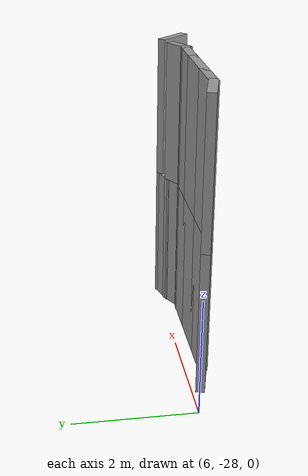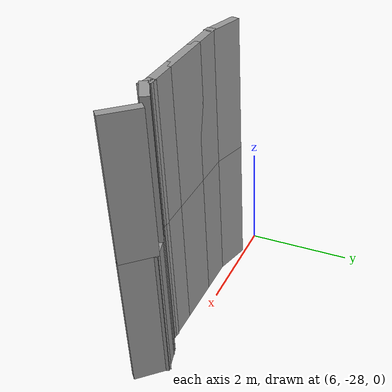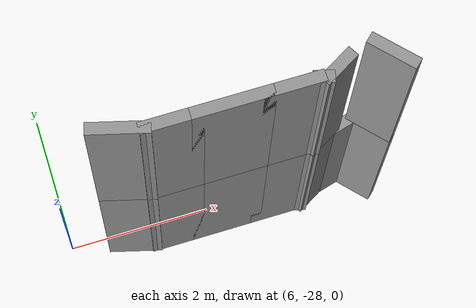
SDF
<sdf version="1.7">
 <model name="EnvDC01">
  <link name="Wall_198">
   <pose>6.88256 -28.224 0 0 0 -0.261799</pose>
   <visual name="Wall_198_Visual">
    <pose>0 0 1.25 0 -0 0</pose>
    <geometry><box><size>0.75 0.15 2.5</size></box></geometry>
    <material>
     <script><uri>file://media/materials/scripts/gazebo.material</uri><name>Gazebo/Grey</name></script>
     <ambient>1 1 1 1</ambient>
     <shader type="pixel"/>
    </material>
    <meta><layer>0</layer></meta>
   </visual>
   <collision name="Wall_198_Collision">
    <pose>0 0 1.25 0 -0 0</pose>
    <geometry><box><size>0.75 0.15 2.5</size></box></geometry>
    <surface>
     <friction>
      <ode><mu>1</mu><mu2>1</mu2><fdir1>0 0 0</fdir1><slip1>0</slip1><slip2>0</slip2></ode>
      <torsional>
       <coefficient>1</coefficient>
       <patch_radius>0</patch_radius>
       <surface_radius>0</surface_radius>
       <use_patch_radius>1</use_patch_radius>
       <ode><slip>0</slip></ode>
      </torsional>
     </friction>
     <bounce><restitution_coefficient>0</restitution_coefficient><threshold>1e+06</threshold></bounce>
     <contact>
      <collide_without_contact>0</collide_without_contact>
      <collide_without_contact_bitmask>1</collide_without_contact_bitmask>
      <collide_bitmask>1</collide_bitmask>
      <ode>
       <soft_cfm>0</soft_cfm>
       <soft_erp>0.2</soft_erp>
       <kp>1e+13</kp>
       <kd>1</kd>
       <max_vel>0.01</max_vel>
       <min_depth>0</min_depth>
      </ode>
      <bullet>
       <split_impulse>1</split_impulse>
       <split_impulse_penetration_threshold>-0.01</split_impulse_penetration_threshold>
       <soft_cfm>0</soft_cfm>
       <soft_erp>0.2</soft_erp>
       <kp>1e+13</kp>
       <kd>1</kd>
      </bullet>
     </contact>
    </surface>
   </collision>
  </link>
  <link name="Wall_199">
   <pose>7.47234 -28.3016 0 0 -0 0</pose>
   <visual name="Wall_199_Visual">
    <pose>0 0 1.25 0 -0 0</pose>
    <geometry><box><size>0.75 0.15 2.5</size></box></geometry>
    <material>
     <script><uri>file://media/materials/scripts/gazebo.material</uri><name>Gazebo/Grey</name></script>
     <ambient>1 1 1 1</ambient>
     <shader type="pixel"/>
    </material>
    <meta><layer>0</layer></meta>
   </visual>
   <collision name="Wall_199_Collision">
    <pose>0 0 1.25 0 -0 0</pose>
    <geometry><box><size>0.75 0.15 2.5</size></box></geometry>
    <surface>
     <friction>
      <ode><mu>1</mu><mu2>1</mu2><fdir1>0 0 0</fdir1><slip1>0</slip1><slip2>0</slip2></ode>
      <torsional>
       <coefficient>1</coefficient>
       <patch_radius>0</patch_radius>
       <surface_radius>0</surface_radius>
       <use_patch_radius>1</use_patch_radius>
       <ode><slip>0</slip></ode>
      </torsional>
     </friction>
     <bounce><restitution_coefficient>0</restitution_coefficient><threshold>1e+06</threshold></bounce>
     <contact>
      <collide_without_contact>0</collide_without_contact>
      <collide_without_contact_bitmask>1</collide_without_contact_bitmask>
      <collide_bitmask>1</collide_bitmask>
      <ode>
       <soft_cfm>0</soft_cfm>
       <soft_erp>0.2</soft_erp>
       <kp>1e+13</kp>
       <kd>1</kd>
       <max_vel>0.01</max_vel>
       <min_depth>0</min_depth>
      </ode>
      <bullet>
       <split_impulse>1</split_impulse>
       <split_impulse_penetration_threshold>-0.01</split_impulse_penetration_threshold>
       <soft_cfm>0</soft_cfm>
       <soft_erp>0.2</soft_erp>
       <kp>1e+13</kp>
       <kd>1</kd>
      </bullet>
     </contact>
    </surface>
   </collision>
  </link>
  <link name="Wall_200">
   <pose>8.19734 -28.3016 0 0 -0 0</pose>
   <visual name="Wall_200_Visual">
    <pose>0 0 1.25 0 -0 0</pose>
    <geometry><box><size>1 0.15 2.5</size></box></geometry>
    <material>
     <script><uri>file://media/materials/scripts/gazebo.material</uri><name>Gazebo/Grey</name></script>
     <ambient>1 1 1 1</ambient>
     <shader type="pixel"/>
    </material>
    <meta><layer>0</layer></meta>
   </visual>
   <collision name="Wall_200_Collision">
    <pose>0 0 1.25 0 -0 0</pose>
    <geometry><box><size>1 0.15 2.5</size></box></geometry>
    <surface>
     <friction>
      <ode><mu>1</mu><mu2>1</mu2><fdir1>0 0 0</fdir1><slip1>0</slip1><slip2>0</slip2></ode>
      <torsional>
       <coefficient>1</coefficient>
       <patch_radius>0</patch_radius>
       <surface_radius>0</surface_radius>
       <use_patch_radius>1</use_patch_radius>
       <ode><slip>0</slip></ode>
      </torsional>
     </friction>
     <bounce><restitution_coefficient>0</restitution_coefficient><threshold>1e+06</threshold></bounce>
     <contact>
      <collide_without_contact>0</collide_without_contact>
      <collide_without_contact_bitmask>1</collide_without_contact_bitmask>
      <collide_bitmask>1</collide_bitmask>
      <ode>
       <soft_cfm>0</soft_cfm>
       <soft_erp>0.2</soft_erp>
       <kp>1e+13</kp>
       <kd>1</kd>
       <max_vel>0.01</max_vel>
       <min_depth>0</min_depth>
      </ode>
      <bullet>
       <split_impulse>1</split_impulse>
       <split_impulse_penetration_threshold>-0.01</split_impulse_penetration_threshold>
       <soft_cfm>0</soft_cfm>
       <soft_erp>0.2</soft_erp>
       <kp>1e+13</kp>
       <kd>1</kd>
      </bullet>
     </contact>
    </surface>
   </collision>
  </link>
  <link name="Wall_201">
   <pose>8.92234 -28.3016 0 0 -0 0</pose>
   <visual name="Wall_201_Visual">
    <pose>0 0 1.25 0 -0 0</pose>
    <geometry><box><size>0.75 0.15 2.5</size></box></geometry>
    <material>
     <script><uri>file://media/materials/scripts/gazebo.material</uri><name>Gazebo/Grey</name></script>
     <ambient>1 1 1 1</ambient>
     <shader type="pixel"/>
    </material>
    <meta><layer>0</layer></meta>
   </visual>
   <collision name="Wall_201_Collision">
    <pose>0 0 1.25 0 -0 0</pose>
    <geometry><box><size>0.75 0.15 2.5</size></box></geometry>
    <surface>
     <friction>
      <ode><mu>1</mu><mu2>1</mu2><fdir1>0 0 0</fdir1><slip1>0</slip1><slip2>0</slip2></ode>
      <torsional>
       <coefficient>1</coefficient>
       <patch_radius>0</patch_radius>
       <surface_radius>0</surface_radius>
       <use_patch_radius>1</use_patch_radius>
       <ode><slip>0</slip></ode>
      </torsional>
     </friction>
     <bounce><restitution_coefficient>0</restitution_coefficient><threshold>1e+06</threshold></bounce>
     <contact>
      <collide_without_contact>0</collide_without_contact>
      <collide_without_contact_bitmask>1</collide_without_contact_bitmask>
      <collide_bitmask>1</collide_bitmask>
      <ode>
       <soft_cfm>0</soft_cfm>
       <soft_erp>0.2</soft_erp>
       <kp>1e+13</kp>
       <kd>1</kd>
       <max_vel>0.01</max_vel>
       <min_depth>0</min_depth>
      </ode>
      <bullet>
       <split_impulse>1</split_impulse>
       <split_impulse_penetration_threshold>-0.01</split_impulse_penetration_threshold>
       <soft_cfm>0</soft_cfm>
       <soft_erp>0.2</soft_erp>
       <kp>1e+13</kp>
       <kd>1</kd>
      </bullet>
     </contact>
    </surface>
   </collision>
  </link>
  <link name="Wall_202">
   <pose>9.27064 -28.3145 0 0 0 -0.261799</pose>
   <visual name="Wall_202_Visual">
    <pose>0 0 1.25 0 -0 0</pose>
    <geometry><box><size>0.25 0.15 2.5</size></box></geometry>
    <material>
     <script><uri>file://media/materials/scripts/gazebo.material</uri><name>Gazebo/Grey</name></script>
     <ambient>1 1 1 1</ambient>
     <shader type="pixel"/>
    </material>
    <meta><layer>0</layer></meta>
   </visual>
   <collision name="Wall_202_Collision">
    <pose>0 0 1.25 0 -0 0</pose>
    <geometry><box><size>0.25 0.15 2.5</size></box></geometry>
    <surface>
     <friction>
      <ode><mu>1</mu><mu2>1</mu2><fdir1>0 0 0</fdir1><slip1>0</slip1><slip2>0</slip2></ode>
      <torsional>
       <coefficient>1</coefficient>
       <patch_radius>0</patch_radius>
       <surface_radius>0</surface_radius>
       <use_patch_radius>1</use_patch_radius>
       <ode><slip>0</slip></ode>
      </torsional>
     </friction>
     <bounce><restitution_coefficient>0</restitution_coefficient><threshold>1e+06</threshold></bounce>
     <contact>
      <collide_without_contact>0</collide_without_contact>
      <collide_without_contact_bitmask>1</collide_without_contact_bitmask>
      <collide_bitmask>1</collide_bitmask>
      <ode>
       <soft_cfm>0</soft_cfm>
       <soft_erp>0.2</soft_erp>
       <kp>1e+13</kp>
       <kd>1</kd>
       <max_vel>0.01</max_vel>
       <min_depth>0</min_depth>
      </ode>
      <bullet>
       <split_impulse>1</split_impulse>
       <split_impulse_penetration_threshold>-0.01</split_impulse_penetration_threshold>
       <soft_cfm>0</soft_cfm>
       <soft_erp>0.2</soft_erp>
       <kp>1e+13</kp>
       <kd>1</kd>
      </bullet>
     </contact>
    </surface>
   </collision>
  </link>
  <link name="Wall_203">
   <pose>9.47049 -28.24 0 0 -0 0.523599</pose>
   <visual name="Wall_203_Visual">
    <pose>0 0 1.25 0 -0 0</pose>
    <geometry><box><size>0.5 0.15 2.5</size></box></geometry>
    <material>
     <script><uri>file://media/materials/scripts/gazebo.material</uri><name>Gazebo/Grey</name></script>
     <ambient>1 1 1 1</ambient>
     <shader type="pixel"/>
    </material>
    <meta><layer>0</layer></meta>
   </visual>
   <collision name="Wall_203_Collision">
    <pose>0 0 1.25 0 -0 0</pose>
    <geometry><box><size>0.5 0.15 2.5</size></box></geometry>
    <surface>
     <friction>
      <ode><mu>1</mu><mu2>1</mu2><fdir1>0 0 0</fdir1><slip1>0</slip1><slip2>0</slip2></ode>
      <torsional>
       <coefficient>1</coefficient>
       <patch_radius>0</patch_radius>
       <surface_radius>0</surface_radius>
       <use_patch_radius>1</use_patch_radius>
       <ode><slip>0</slip></ode>
      </torsional>
     </friction>
     <bounce><restitution_coefficient>0</restitution_coefficient><threshold>1e+06</threshold></bounce>
     <contact>
      <collide_without_contact>0</collide_without_contact>
      <collide_without_contact_bitmask>1</collide_without_contact_bitmask>
      <collide_bitmask>1</collide_bitmask>
      <ode>
       <soft_cfm>0</soft_cfm>
       <soft_erp>0.2</soft_erp>
       <kp>1e+13</kp>
       <kd>1</kd>
       <max_vel>0.01</max_vel>
       <min_depth>0</min_depth>
      </ode>
      <bullet>
       <split_impulse>1</split_impulse>
       <split_impulse_penetration_threshold>-0.01</split_impulse_penetration_threshold>
       <soft_cfm>0</soft_cfm>
       <soft_erp>0.2</soft_erp>
       <kp>1e+13</kp>
       <kd>1</kd>
      </bullet>
     </contact>
    </surface>
   </collision>
  </link>
  <link name="Wall_204">
   <pose>9.79108 -28.1072 0 0 -0 0.261799</pose>
   <visual name="Wall_204_Visual">
    <pose>0 0 1.25 0 -0 0</pose>
    <geometry><box><size>0.5 0.15 2.5</size></box></geometry>
    <material>
     <script><uri>file://media/materials/scripts/gazebo.material</uri><name>Gazebo/Grey</name></script>
     <ambient>1 1 1 1</ambient>
     <shader type="pixel"/>
    </material>
    <meta><layer>0</layer></meta>
   </visual>
   <collision name="Wall_204_Collision">
    <pose>0 0 1.25 0 -0 0</pose>
    <geometry><box><size>0.5 0.15 2.5</size></box></geometry>
    <surface>
     <friction>
      <ode><mu>1</mu><mu2>1</mu2><fdir1>0 0 0</fdir1><slip1>0</slip1><slip2>0</slip2></ode>
      <torsional>
       <coefficient>1</coefficient>
       <patch_radius>0</patch_radius>
       <surface_radius>0</surface_radius>
       <use_patch_radius>1</use_patch_radius>
       <ode><slip>0</slip></ode>
      </torsional>
     </friction>
     <bounce><restitution_coefficient>0</restitution_coefficient><threshold>1e+06</threshold></bounce>
     <contact>
      <collide_without_contact>0</collide_without_contact>
      <collide_without_contact_bitmask>1</collide_without_contact_bitmask>
      <collide_bitmask>1</collide_bitmask>
      <ode>
       <soft_cfm>0</soft_cfm>
       <soft_erp>0.2</soft_erp>
       <kp>1e+13</kp>
       <kd>1</kd>
       <max_vel>0.01</max_vel>
       <min_depth>0</min_depth>
      </ode>
      <bullet>
       <split_impulse>1</split_impulse>
       <split_impulse_penetration_threshold>-0.01</split_impulse_penetration_threshold>
       <soft_cfm>0</soft_cfm>
       <soft_erp>0.2</soft_erp>
       <kp>1e+13</kp>
       <kd>1</kd>
      </bullet>
     </contact>
    </surface>
   </collision>
  </link>
  <link name="Wall_205">
   <pose>10.1264 -28.2458 0 0 0 -0.835722</pose>
   <visual name="Wall_205_Visual">
    <pose>0 0 1.25 0 -0 0</pose>
    <geometry><box><size>0.645839 0.15 2.5</size></box></geometry>
    <material>
     <script><uri>file://media/materials/scripts/gazebo.material</uri><name>Gazebo/Grey</name></script>
     <ambient>1 1 1 1</ambient>
     <shader type="pixel"/>
    </material>
    <meta><layer>0</layer></meta>
   </visual>
   <collision name="Wall_205_Collision">
    <pose>0 0 1.25 0 -0 0</pose>
    <geometry><box><size>0.645839 0.15 2.5</size></box></geometry>
    <surface>
     <friction>
      <ode><mu>1</mu><mu2>1</mu2><fdir1>0 0 0</fdir1><slip1>0</slip1><slip2>0</slip2></ode>
      <torsional>
       <coefficient>1</coefficient>
       <patch_radius>0</patch_radius>
       <surface_radius>0</surface_radius>
       <use_patch_radius>1</use_patch_radius>
       <ode><slip>0</slip></ode>
      </torsional>
     </friction>
     <bounce><restitution_coefficient>0</restitution_coefficient><threshold>1e+06</threshold></bounce>
     <contact>
      <collide_without_contact>0</collide_without_contact>
      <collide_without_contact_bitmask>1</collide_without_contact_bitmask>
      <collide_bitmask>1</collide_bitmask>
      <ode>
       <soft_cfm>0</soft_cfm>
       <soft_erp>0.2</soft_erp>
       <kp>1e+13</kp>
       <kd>1</kd>
       <max_vel>0.01</max_vel>
       <min_depth>0</min_depth>
      </ode>
      <bullet>
       <split_impulse>1</split_impulse>
       <split_impulse_penetration_threshold>-0.01</split_impulse_penetration_threshold>
       <soft_cfm>0</soft_cfm>
       <soft_erp>0.2</soft_erp>
       <kp>1e+13</kp>
       <kd>1</kd>
      </bullet>
     </contact>
    </surface>
   </collision>
  </link>
  <link name="Wall_372">
   <pose>6.88256 -28.224 2.5 0 0 -0.261799</pose>
   <visual name="Wall_372_Visual">
    <pose>0 0 1.25 0 -0 0</pose>
    <geometry><box><size>0.75 0.15 2.5</size></box></geometry>
    <material>
     <script><uri>file://media/materials/scripts/gazebo.material</uri><name>Gazebo/Grey</name></script>
     <ambient>1 1 1 1</ambient>
     <shader type="pixel"/>
    </material>
    <meta><layer>1</layer></meta>
   </visual>
   <collision name="Wall_372_Collision">
    <pose>0 0 1.25 0 -0 0</pose>
    <geometry><box><size>0.75 0.15 2.5</size></box></geometry>
    <surface>
     <friction>
      <ode><mu>1</mu><mu2>1</mu2><fdir1>0 0 0</fdir1><slip1>0</slip1><slip2>0</slip2></ode>
      <torsional>
       <coefficient>1</coefficient>
       <patch_radius>0</patch_radius>
       <surface_radius>0</surface_radius>
       <use_patch_radius>1</use_patch_radius>
       <ode><slip>0</slip></ode>
      </torsional>
     </friction>
     <bounce><restitution_coefficient>0</restitution_coefficient><threshold>1e+06</threshold></bounce>
     <contact>
      <collide_without_contact>0</collide_without_contact>
      <collide_without_contact_bitmask>1</collide_without_contact_bitmask>
      <collide_bitmask>1</collide_bitmask>
      <ode>
       <soft_cfm>0</soft_cfm>
       <soft_erp>0.2</soft_erp>
       <kp>1e+13</kp>
       <kd>1</kd>
       <max_vel>0.01</max_vel>
       <min_depth>0</min_depth>
      </ode>
      <bullet>
       <split_impulse>1</split_impulse>
       <split_impulse_penetration_threshold>-0.01</split_impulse_penetration_threshold>
       <soft_cfm>0</soft_cfm>
       <soft_erp>0.2</soft_erp>
       <kp>1e+13</kp>
       <kd>1</kd>
      </bullet>
     </contact>
    </surface>
   </collision>
  </link>
  <link name="Wall_373">
   <pose>7.47234 -28.3016 2.5 0 -0 0</pose>
   <visual name="Wall_373_Visual">
    <pose>0 0 1.25 0 -0 0</pose>
    <geometry><box><size>0.75 0.15 2.5</size></box></geometry>
    <material>
     <script><uri>file://media/materials/scripts/gazebo.material</uri><name>Gazebo/Grey</name></script>
     <ambient>1 1 1 1</ambient>
     <shader type="pixel"/>
    </material>
    <meta><layer>1</layer></meta>
   </visual>
   <collision name="Wall_373_Collision">
    <pose>0 0 1.25 0 -0 0</pose>
    <geometry><box><size>0.75 0.15 2.5</size></box></geometry>
    <surface>
     <friction>
      <ode><mu>1</mu><mu2>1</mu2><fdir1>0 0 0</fdir1><slip1>0</slip1><slip2>0</slip2></ode>
      <torsional>
       <coefficient>1</coefficient>
       <patch_radius>0</patch_radius>
       <surface_radius>0</surface_radius>
       <use_patch_radius>1</use_patch_radius>
       <ode><slip>0</slip></ode>
      </torsional>
     </friction>
     <bounce><restitution_coefficient>0</restitution_coefficient><threshold>1e+06</threshold></bounce>
     <contact>
      <collide_without_contact>0</collide_without_contact>
      <collide_without_contact_bitmask>1</collide_without_contact_bitmask>
      <collide_bitmask>1</collide_bitmask>
      <ode>
       <soft_cfm>0</soft_cfm>
       <soft_erp>0.2</soft_erp>
       <kp>1e+13</kp>
       <kd>1</kd>
       <max_vel>0.01</max_vel>
       <min_depth>0</min_depth>
      </ode>
      <bullet>
       <split_impulse>1</split_impulse>
       <split_impulse_penetration_threshold>-0.01</split_impulse_penetration_threshold>
       <soft_cfm>0</soft_cfm>
       <soft_erp>0.2</soft_erp>
       <kp>1e+13</kp>
       <kd>1</kd>
      </bullet>
     </contact>
    </surface>
   </collision>
  </link>
  <link name="Wall_374">
   <pose>8.19734 -28.3016 2.5 0 -0 0</pose>
   <visual name="Wall_374_Visual">
    <pose>0 0 1.25 0 -0 0</pose>
    <geometry><box><size>1 0.15 2.5</size></box></geometry>
    <material>
     <script><uri>file://media/materials/scripts/gazebo.material</uri><name>Gazebo/Grey</name></script>
     <ambient>1 1 1 1</ambient>
     <shader type="pixel"/>
    </material>
    <meta><layer>1</layer></meta>
   </visual>
   <collision name="Wall_374_Collision">
    <pose>0 0 1.25 0 -0 0</pose>
    <geometry><box><size>1 0.15 2.5</size></box></geometry>
    <surface>
     <friction>
      <ode><mu>1</mu><mu2>1</mu2><fdir1>0 0 0</fdir1><slip1>0</slip1><slip2>0</slip2></ode>
      <torsional>
       <coefficient>1</coefficient>
       <patch_radius>0</patch_radius>
       <surface_radius>0</surface_radius>
       <use_patch_radius>1</use_patch_radius>
       <ode><slip>0</slip></ode>
      </torsional>
     </friction>
     <bounce><restitution_coefficient>0</restitution_coefficient><threshold>1e+06</threshold></bounce>
     <contact>
      <collide_without_contact>0</collide_without_contact>
      <collide_without_contact_bitmask>1</collide_without_contact_bitmask>
      <collide_bitmask>1</collide_bitmask>
      <ode>
       <soft_cfm>0</soft_cfm>
       <soft_erp>0.2</soft_erp>
       <kp>1e+13</kp>
       <kd>1</kd>
       <max_vel>0.01</max_vel>
       <min_depth>0</min_depth>
      </ode>
      <bullet>
       <split_impulse>1</split_impulse>
       <split_impulse_penetration_threshold>-0.01</split_impulse_penetration_threshold>
       <soft_cfm>0</soft_cfm>
       <soft_erp>0.2</soft_erp>
       <kp>1e+13</kp>
       <kd>1</kd>
      </bullet>
     </contact>
    </surface>
   </collision>
  </link>
  <link name="Wall_375">
   <pose>8.92234 -28.3016 2.5 0 -0 0</pose>
   <visual name="Wall_375_Visual">
    <pose>0 0 1.25 0 -0 0</pose>
    <geometry><box><size>0.75 0.15 2.5</size></box></geometry>
    <material>
     <script><uri>file://media/materials/scripts/gazebo.material</uri><name>Gazebo/Grey</name></script>
     <ambient>1 1 1 1</ambient>
     <shader type="pixel"/>
    </material>
    <meta><layer>1</layer></meta>
   </visual>
   <collision name="Wall_375_Collision">
    <pose>0 0 1.25 0 -0 0</pose>
    <geometry><box><size>0.75 0.15 2.5</size></box></geometry>
    <surface>
     <friction>
      <ode><mu>1</mu><mu2>1</mu2><fdir1>0 0 0</fdir1><slip1>0</slip1><slip2>0</slip2></ode>
      <torsional>
       <coefficient>1</coefficient>
       <patch_radius>0</patch_radius>
       <surface_radius>0</surface_radius>
       <use_patch_radius>1</use_patch_radius>
       <ode><slip>0</slip></ode>
      </torsional>
     </friction>
     <bounce><restitution_coefficient>0</restitution_coefficient><threshold>1e+06</threshold></bounce>
     <contact>
      <collide_without_contact>0</collide_without_contact>
      <collide_without_contact_bitmask>1</collide_without_contact_bitmask>
      <collide_bitmask>1</collide_bitmask>
      <ode>
       <soft_cfm>0</soft_cfm>
       <soft_erp>0.2</soft_erp>
       <kp>1e+13</kp>
       <kd>1</kd>
       <max_vel>0.01</max_vel>
       <min_depth>0</min_depth>
      </ode>
      <bullet>
       <split_impulse>1</split_impulse>
       <split_impulse_penetration_threshold>-0.01</split_impulse_penetration_threshold>
       <soft_cfm>0</soft_cfm>
       <soft_erp>0.2</soft_erp>
       <kp>1e+13</kp>
       <kd>1</kd>
      </bullet>
     </contact>
    </surface>
   </collision>
  </link>
  <link name="Wall_376">
   <pose>9.27064 -28.3145 2.5 0 0 -0.261799</pose>
   <visual name="Wall_376_Visual">
    <pose>0 0 1.25 0 -0 0</pose>
    <geometry><box><size>0.25 0.15 2.5</size></box></geometry>
    <material>
     <script><uri>file://media/materials/scripts/gazebo.material</uri><name>Gazebo/Grey</name></script>
     <ambient>1 1 1 1</ambient>
     <shader type="pixel"/>
    </material>
    <meta><layer>1</layer></meta>
   </visual>
   <collision name="Wall_376_Collision">
    <pose>0 0 1.25 0 -0 0</pose>
    <geometry><box><size>0.25 0.15 2.5</size></box></geometry>
    <surface>
     <friction>
      <ode><mu>1</mu><mu2>1</mu2><fdir1>0 0 0</fdir1><slip1>0</slip1><slip2>0</slip2></ode>
      <torsional>
       <coefficient>1</coefficient>
       <patch_radius>0</patch_radius>
       <surface_radius>0</surface_radius>
       <use_patch_radius>1</use_patch_radius>
       <ode><slip>0</slip></ode>
      </torsional>
     </friction>
     <bounce><restitution_coefficient>0</restitution_coefficient><threshold>1e+06</threshold></bounce>
     <contact>
      <collide_without_contact>0</collide_without_contact>
      <collide_without_contact_bitmask>1</collide_without_contact_bitmask>
      <collide_bitmask>1</collide_bitmask>
      <ode>
       <soft_cfm>0</soft_cfm>
       <soft_erp>0.2</soft_erp>
       <kp>1e+13</kp>
       <kd>1</kd>
       <max_vel>0.01</max_vel>
       <min_depth>0</min_depth>
      </ode>
      <bullet>
       <split_impulse>1</split_impulse>
       <split_impulse_penetration_threshold>-0.01</split_impulse_penetration_threshold>
       <soft_cfm>0</soft_cfm>
       <soft_erp>0.2</soft_erp>
       <kp>1e+13</kp>
       <kd>1</kd>
      </bullet>
     </contact>
    </surface>
   </collision>
  </link>
  <link name="Wall_377">
   <pose>9.47049 -28.24 2.5 0 -0 0.523599</pose>
   <visual name="Wall_377_Visual">
    <pose>0 0 1.25 0 -0 0</pose>
    <geometry><box><size>0.5 0.15 2.5</size></box></geometry>
    <material>
     <script><uri>file://media/materials/scripts/gazebo.material</uri><name>Gazebo/Grey</name></script>
     <ambient>1 1 1 1</ambient>
     <shader type="pixel"/>
    </material>
    <meta><layer>1</layer></meta>
   </visual>
   <collision name="Wall_377_Collision">
    <pose>0 0 1.25 0 -0 0</pose>
    <geometry><box><size>0.5 0.15 2.5</size></box></geometry>
    <surface>
     <friction>
      <ode><mu>1</mu><mu2>1</mu2><fdir1>0 0 0</fdir1><slip1>0</slip1><slip2>0</slip2></ode>
      <torsional>
       <coefficient>1</coefficient>
       <patch_radius>0</patch_radius>
       <surface_radius>0</surface_radius>
       <use_patch_radius>1</use_patch_radius>
       <ode><slip>0</slip></ode>
      </torsional>
     </friction>
     <bounce><restitution_coefficient>0</restitution_coefficient><threshold>1e+06</threshold></bounce>
     <contact>
      <collide_without_contact>0</collide_without_contact>
      <collide_without_contact_bitmask>1</collide_without_contact_bitmask>
      <collide_bitmask>1</collide_bitmask>
      <ode>
       <soft_cfm>0</soft_cfm>
       <soft_erp>0.2</soft_erp>
       <kp>1e+13</kp>
       <kd>1</kd>
       <max_vel>0.01</max_vel>
       <min_depth>0</min_depth>
      </ode>
      <bullet>
       <split_impulse>1</split_impulse>
       <split_impulse_penetration_threshold>-0.01</split_impulse_penetration_threshold>
       <soft_cfm>0</soft_cfm>
       <soft_erp>0.2</soft_erp>
       <kp>1e+13</kp>
       <kd>1</kd>
      </bullet>
     </contact>
    </surface>
   </collision>
  </link>
  <link name="Wall_379">
   <pose>10.1264 -28.2458 2.5 0 0 -0.835722</pose>
   <visual name="Wall_379_Visual">
    <pose>0 0 1.25 0 -0 0</pose>
    <geometry><box><size>0.645839 0.15 2.5</size></box></geometry>
    <material>
     <script><uri>file://media/materials/scripts/gazebo.material</uri><name>Gazebo/Grey</name></script>
     <ambient>1 1 1 1</ambient>
     <shader type="pixel"/>
    </material>
    <meta><layer>1</layer></meta>
   </visual>
   <collision name="Wall_379_Collision">
    <pose>0 0 1.25 0 -0 0</pose>
    <geometry><box><size>0.645839 0.15 2.5</size></box></geometry>
    <surface>
     <friction>
      <ode><mu>1</mu><mu2>1</mu2><fdir1>0 0 0</fdir1><slip1>0</slip1><slip2>0</slip2></ode>
      <torsional>
       <coefficient>1</coefficient>
       <patch_radius>0</patch_radius>
       <surface_radius>0</surface_radius>
       <use_patch_radius>1</use_patch_radius>
       <ode><slip>0</slip></ode>
      </torsional>
     </friction>
     <bounce><restitution_coefficient>0</restitution_coefficient><threshold>1e+06</threshold></bounce>
     <contact>
      <collide_without_contact>0</collide_without_contact>
      <collide_without_contact_bitmask>1</collide_without_contact_bitmask>
      <collide_bitmask>1</collide_bitmask>
      <ode>
       <soft_cfm>0</soft_cfm>
       <soft_erp>0.2</soft_erp>
       <kp>1e+13</kp>
       <kd>1</kd>
       <max_vel>0.01</max_vel>
       <min_depth>0</min_depth>
      </ode>
      <bullet>
       <split_impulse>1</split_impulse>
       <split_impulse_penetration_threshold>-0.01</split_impulse_penetration_threshold>
       <soft_cfm>0</soft_cfm>
       <soft_erp>0.2</soft_erp>
       <kp>1e+13</kp>
       <kd>1</kd>
      </bullet>
     </contact>
    </surface>
   </collision>
  </link>
  <static>1</static>
 </model>
</sdf>
